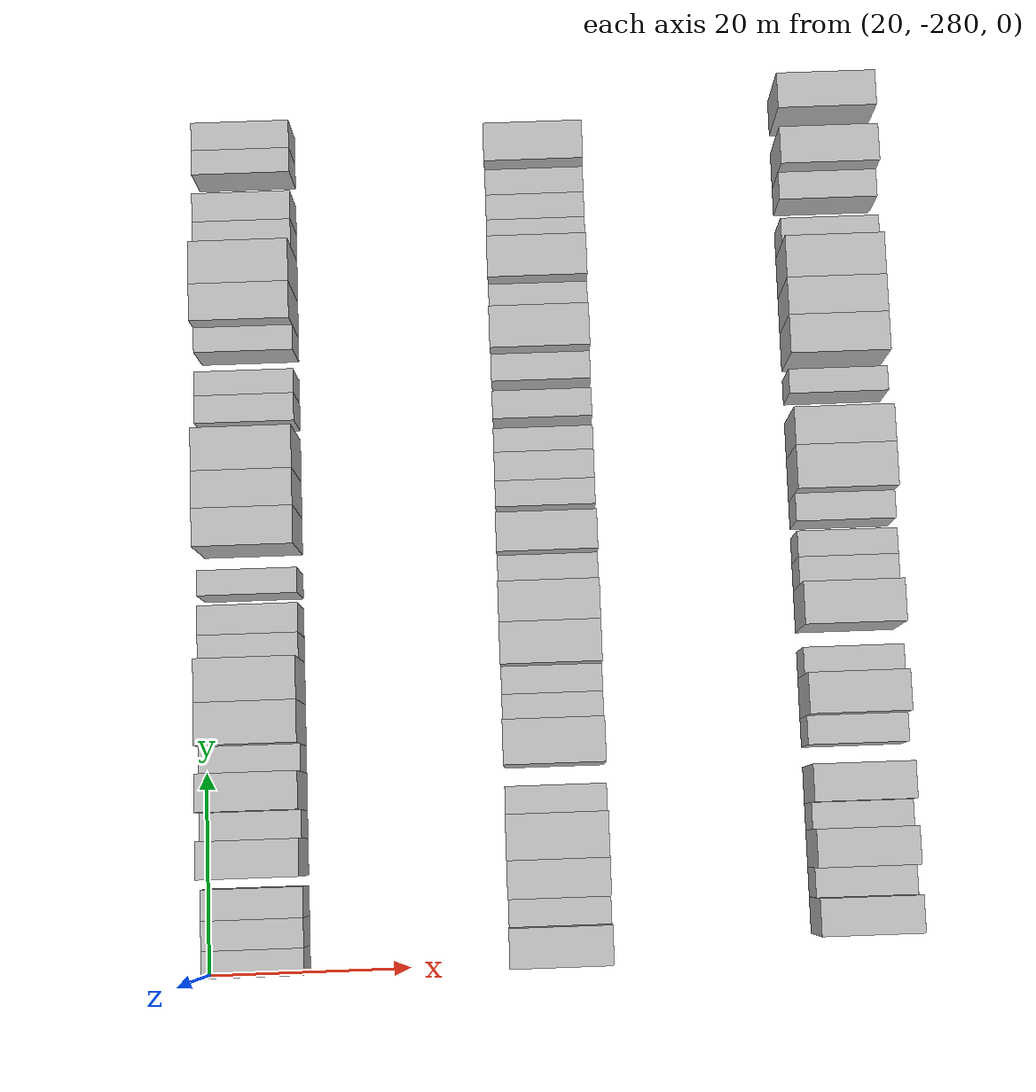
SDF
<sdf version="1.6">
 <world name="default">
  <model name="building_1">
   <static>1</static>
   <pose>25.0000 -278.6960 0 0.000000 0.000000 0.000000</pose>
   <link name="link">
    <pose>0 0 3.00 0 0 0</pose>
    <collision name="collision"><geometry><box><size>10.0000 2.6080 6.0000</size></box></geometry></collision>
    <visual name="visual">
     <cast_shadows>0</cast_shadows>
     <geometry><box><size>10.0000 2.6080 6.0000</size></box></geometry>
     <material>
      <script>
       <uri>model://HANNAS_wall/materials/scripts</uri>
       <uri>model://HANNAS_wall/materials/textures</uri>
       <name>vrc/HANNAS_wall</name>
      </script>
     </material>
    </visual>
   </link>
  </model>
  <model name="building_2">
   <static>1</static>
   <pose>25.0000 -275.9448 0 0.000000 0.000000 0.000000</pose>
   <link name="link">
    <pose>0 0 3.00 0 0 0</pose>
    <collision name="collision"><geometry><box><size>10.0000 2.8943 6.0000</size></box></geometry></collision>
    <visual name="visual">
     <cast_shadows>0</cast_shadows>
     <geometry><box><size>10.0000 2.8943 6.0000</size></box></geometry>
     <material>
      <script>
       <uri>model://HANNAS_wall/materials/scripts</uri>
       <uri>model://HANNAS_wall/materials/textures</uri>
       <name>vrc/HANNAS_wall</name>
      </script>
     </material>
    </visual>
   </link>
  </model>
  <model name="building_3">
   <static>1</static>
   <pose>25.0000 -272.9993 0 0.000000 0.000000 0.000000</pose>
   <link name="link">
    <pose>0 0 3.00 0 0 0</pose>
    <collision name="collision"><geometry><box><size>10.0000 2.9968 6.0000</size></box></geometry></collision>
    <visual name="visual">
     <cast_shadows>0</cast_shadows>
     <geometry><box><size>10.0000 2.9968 6.0000</size></box></geometry>
     <material>
      <script>
       <uri>model://HANNAS_wall/materials/scripts</uri>
       <uri>model://HANNAS_wall/materials/textures</uri>
       <name>vrc/HANNAS_wall</name>
      </script>
     </material>
    </visual>
   </link>
  </model>
  <model name="building_4">
   <static>1</static>
   <pose>25.0000 -268.6715 0 0.000000 0.000000 0.000000</pose>
   <link name="link">
    <pose>0 0 4.50 0 0 0</pose>
    <collision name="collision"><geometry><box><size>10.0000 3.6588 9.0000</size></box></geometry></collision>
    <visual name="visual">
     <cast_shadows>0</cast_shadows>
     <geometry><box><size>10.0000 3.6588 9.0000</size></box></geometry>
     <material>
      <script>
       <uri>model://HANNAS_wall/materials/scripts</uri>
       <uri>model://HANNAS_wall/materials/textures</uri>
       <name>vrc/HANNAS_wall</name>
      </script>
     </material>
    </visual>
   </link>
  </model>
  <model name="building_5">
   <static>1</static>
   <pose>25.0000 -265.4527 0 0.000000 0.000000 0.000000</pose>
   <link name="link">
    <pose>0 0 3.00 0 0 0</pose>
    <collision name="collision"><geometry><box><size>10.0000 2.7790 6.0000</size></box></geometry></collision>
    <visual name="visual">
     <cast_shadows>0</cast_shadows>
     <geometry><box><size>10.0000 2.7790 6.0000</size></box></geometry>
     <material>
      <script>
       <uri>model://HANNAS_wall/materials/scripts</uri>
       <uri>model://HANNAS_wall/materials/textures</uri>
       <name>vrc/HANNAS_wall</name>
      </script>
     </material>
    </visual>
   </link>
  </model>
  <model name="building_6">
   <static>1</static>
   <pose>25.0000 -262.1939 0 0.000000 0.000000 0.000000</pose>
   <link name="link">
    <pose>0 0 4.50 0 0 0</pose>
    <collision name="collision"><geometry><box><size>10.0000 3.7385 9.0000</size></box></geometry></collision>
    <visual name="visual">
     <cast_shadows>0</cast_shadows>
     <geometry><box><size>10.0000 3.7385 9.0000</size></box></geometry>
     <material>
      <script>
       <uri>model://HANNAS_wall/materials/scripts</uri>
       <uri>model://HANNAS_wall/materials/textures</uri>
       <name>vrc/HANNAS_wall</name>
      </script>
     </material>
    </visual>
   </link>
  </model>
  <model name="building_7">
   <static>1</static>
   <pose>25.0000 -258.9581 0 0.000000 0.000000 0.000000</pose>
   <link name="link">
    <pose>0 0 3.00 0 0 0</pose>
    <collision name="collision"><geometry><box><size>10.0000 2.7331 6.0000</size></box></geometry></collision>
    <visual name="visual">
     <cast_shadows>0</cast_shadows>
     <geometry><box><size>10.0000 2.7331 6.0000</size></box></geometry>
     <material>
      <script>
       <uri>model://HANNAS_wall/materials/scripts</uri>
       <uri>model://HANNAS_wall/materials/textures</uri>
       <name>vrc/HANNAS_wall</name>
      </script>
     </material>
    </visual>
   </link>
  </model>
  <model name="building_8">
   <static>1</static>
   <pose>25.0000 -255.5041 0 0.000000 0.000000 0.000000</pose>
   <link name="link">
    <pose>0 0 4.50 0 0 0</pose>
    <collision name="collision"><geometry><box><size>10.0000 4.1749 9.0000</size></box></geometry></collision>
    <visual name="visual">
     <cast_shadows>0</cast_shadows>
     <geometry><box><size>10.0000 4.1749 9.0000</size></box></geometry>
     <material>
      <script>
       <uri>model://HANNAS_wall/materials/scripts</uri>
       <uri>model://HANNAS_wall/materials/textures</uri>
       <name>vrc/HANNAS_wall</name>
      </script>
     </material>
    </visual>
   </link>
  </model>
  <model name="building_9">
   <static>1</static>
   <pose>25.0000 -251.2742 0 0.000000 0.000000 0.000000</pose>
   <link name="link">
    <pose>0 0 4.50 0 0 0</pose>
    <collision name="collision"><geometry><box><size>10.0000 4.2849 9.0000</size></box></geometry></collision>
    <visual name="visual">
     <cast_shadows>0</cast_shadows>
     <geometry><box><size>10.0000 4.2849 9.0000</size></box></geometry>
     <material>
      <script>
       <uri>model://HANNAS_wall/materials/scripts</uri>
       <uri>model://HANNAS_wall/materials/textures</uri>
       <name>vrc/HANNAS_wall</name>
      </script>
     </material>
    </visual>
   </link>
  </model>
  <model name="building_10">
   <static>1</static>
   <pose>25.0000 -247.8500 0 0.000000 0.000000 0.000000</pose>
   <link name="link">
    <pose>0 0 3.00 0 0 0</pose>
    <collision name="collision"><geometry><box><size>10.0000 2.5636 6.0000</size></box></geometry></collision>
    <visual name="visual">
     <cast_shadows>0</cast_shadows>
     <geometry><box><size>10.0000 2.5636 6.0000</size></box></geometry>
     <material>
      <script>
       <uri>model://HANNAS_wall/materials/scripts</uri>
       <uri>model://HANNAS_wall/materials/textures</uri>
       <name>vrc/HANNAS_wall</name>
      </script>
     </material>
    </visual>
   </link>
  </model>
  <model name="building_11">
   <static>1</static>
   <pose>25.0000 -245.0954 0 0.000000 0.000000 0.000000</pose>
   <link name="link">
    <pose>0 0 3.00 0 0 0</pose>
    <collision name="collision"><geometry><box><size>10.0000 2.9456 6.0000</size></box></geometry></collision>
    <visual name="visual">
     <cast_shadows>0</cast_shadows>
     <geometry><box><size>10.0000 2.9456 6.0000</size></box></geometry>
     <material>
      <script>
       <uri>model://HANNAS_wall/materials/scripts</uri>
       <uri>model://HANNAS_wall/materials/textures</uri>
       <name>vrc/HANNAS_wall</name>
      </script>
     </material>
    </visual>
   </link>
  </model>
  <model name="building_12">
   <static>1</static>
   <pose>25.0000 -241.3536 0 0.000000 0.000000 0.000000</pose>
   <link name="link">
    <pose>0 0 3.00 0 0 0</pose>
    <collision name="collision"><geometry><box><size>10.0000 2.5378 6.0000</size></box></geometry></collision>
    <visual name="visual">
     <cast_shadows>0</cast_shadows>
     <geometry><box><size>10.0000 2.5378 6.0000</size></box></geometry>
     <material>
      <script>
       <uri>model://HANNAS_wall/materials/scripts</uri>
       <uri>model://HANNAS_wall/materials/textures</uri>
       <name>vrc/HANNAS_wall</name>
      </script>
     </material>
    </visual>
   </link>
  </model>
  <model name="building_13">
   <static>1</static>
   <pose>25.0000 -236.1740 0 0.000000 0.000000 0.000000</pose>
   <link name="link">
    <pose>0 0 4.50 0 0 0</pose>
    <collision name="collision"><geometry><box><size>10.0000 3.8214 9.0000</size></box></geometry></collision>
    <visual name="visual">
     <cast_shadows>0</cast_shadows>
     <geometry><box><size>10.0000 3.8214 9.0000</size></box></geometry>
     <material>
      <script>
       <uri>model://HANNAS_wall/materials/scripts</uri>
       <uri>model://HANNAS_wall/materials/textures</uri>
       <name>vrc/HANNAS_wall</name>
      </script>
     </material>
    </visual>
   </link>
  </model>
  <model name="building_14">
   <static>1</static>
   <pose>25.0000 -232.3892 0 0.000000 0.000000 0.000000</pose>
   <link name="link">
    <pose>0 0 4.50 0 0 0</pose>
    <collision name="collision"><geometry><box><size>10.0000 3.7483 9.0000</size></box></geometry></collision>
    <visual name="visual">
     <cast_shadows>0</cast_shadows>
     <geometry><box><size>10.0000 3.7483 9.0000</size></box></geometry>
     <material>
      <script>
       <uri>model://HANNAS_wall/materials/scripts</uri>
       <uri>model://HANNAS_wall/materials/textures</uri>
       <name>vrc/HANNAS_wall</name>
      </script>
     </material>
    </visual>
   </link>
  </model>
  <model name="building_15">
   <static>1</static>
   <pose>25.0000 -228.3384 0 0.000000 0.000000 0.000000</pose>
   <link name="link">
    <pose>0 0 4.50 0 0 0</pose>
    <collision name="collision"><geometry><box><size>10.0000 4.3533 9.0000</size></box></geometry></collision>
    <visual name="visual">
     <cast_shadows>0</cast_shadows>
     <geometry><box><size>10.0000 4.3533 9.0000</size></box></geometry>
     <material>
      <script>
       <uri>model://HANNAS_wall/materials/scripts</uri>
       <uri>model://HANNAS_wall/materials/textures</uri>
       <name>vrc/HANNAS_wall</name>
      </script>
     </material>
    </visual>
   </link>
  </model>
  <model name="building_16">
   <static>1</static>
   <pose>25.0000 -223.7473 0 0.000000 0.000000 0.000000</pose>
   <link name="link">
    <pose>0 0 3.00 0 0 0</pose>
    <collision name="collision"><geometry><box><size>10.0000 2.8288 6.0000</size></box></geometry></collision>
    <visual name="visual">
     <cast_shadows>0</cast_shadows>
     <geometry><box><size>10.0000 2.8288 6.0000</size></box></geometry>
     <material>
      <script>
       <uri>model://HANNAS_wall/materials/scripts</uri>
       <uri>model://HANNAS_wall/materials/textures</uri>
       <name>vrc/HANNAS_wall</name>
      </script>
     </material>
    </visual>
   </link>
  </model>
  <model name="building_17">
   <static>1</static>
   <pose>25.0000 -221.0974 0 0.000000 0.000000 0.000000</pose>
   <link name="link">
    <pose>0 0 3.00 0 0 0</pose>
    <collision name="collision"><geometry><box><size>10.0000 2.4709 6.0000</size></box></geometry></collision>
    <visual name="visual">
     <cast_shadows>0</cast_shadows>
     <geometry><box><size>10.0000 2.4709 6.0000</size></box></geometry>
     <material>
      <script>
       <uri>model://HANNAS_wall/materials/scripts</uri>
       <uri>model://HANNAS_wall/materials/textures</uri>
       <name>vrc/HANNAS_wall</name>
      </script>
     </material>
    </visual>
   </link>
  </model>
  <model name="building_18">
   <static>1</static>
   <pose>25.0000 -216.5776 0 0.000000 0.000000 0.000000</pose>
   <link name="link">
    <pose>0 0 3.00 0 0 0</pose>
    <collision name="collision"><geometry><box><size>10.0000 2.5687 6.0000</size></box></geometry></collision>
    <visual name="visual">
     <cast_shadows>0</cast_shadows>
     <geometry><box><size>10.0000 2.5687 6.0000</size></box></geometry>
     <material>
      <script>
       <uri>model://HANNAS_wall/materials/scripts</uri>
       <uri>model://HANNAS_wall/materials/textures</uri>
       <name>vrc/HANNAS_wall</name>
      </script>
     </material>
    </visual>
   </link>
  </model>
  <model name="building_19">
   <static>1</static>
   <pose>25.0000 -213.3972 0 0.000000 0.000000 0.000000</pose>
   <link name="link">
    <pose>0 0 4.50 0 0 0</pose>
    <collision name="collision"><geometry><box><size>10.0000 3.7922 9.0000</size></box></geometry></collision>
    <visual name="visual">
     <cast_shadows>0</cast_shadows>
     <geometry><box><size>10.0000 3.7922 9.0000</size></box></geometry>
     <material>
      <script>
       <uri>model://HANNAS_wall/materials/scripts</uri>
       <uri>model://HANNAS_wall/materials/textures</uri>
       <name>vrc/HANNAS_wall</name>
      </script>
     </material>
    </visual>
   </link>
  </model>
  <model name="building_20">
   <static>1</static>
   <pose>25.0000 -209.3081 0 0.000000 0.000000 0.000000</pose>
   <link name="link">
    <pose>0 0 4.50 0 0 0</pose>
    <collision name="collision"><geometry><box><size>10.0000 4.3859 9.0000</size></box></geometry></collision>
    <visual name="visual">
     <cast_shadows>0</cast_shadows>
     <geometry><box><size>10.0000 4.3859 9.0000</size></box></geometry>
     <material>
      <script>
       <uri>model://HANNAS_wall/materials/scripts</uri>
       <uri>model://HANNAS_wall/materials/textures</uri>
       <name>vrc/HANNAS_wall</name>
      </script>
     </material>
    </visual>
   </link>
  </model>
  <model name="building_21">
   <static>1</static>
   <pose>25.0000 -205.6732 0 0.000000 0.000000 0.000000</pose>
   <link name="link">
    <pose>0 0 3.00 0 0 0</pose>
    <collision name="collision"><geometry><box><size>10.0000 2.8840 6.0000</size></box></geometry></collision>
    <visual name="visual">
     <cast_shadows>0</cast_shadows>
     <geometry><box><size>10.0000 2.8840 6.0000</size></box></geometry>
     <material>
      <script>
       <uri>model://HANNAS_wall/materials/scripts</uri>
       <uri>model://HANNAS_wall/materials/textures</uri>
       <name>vrc/HANNAS_wall</name>
      </script>
     </material>
    </visual>
   </link>
  </model>
  <model name="building_22">
   <static>1</static>
   <pose>25.0000 -202.7381 0 0.000000 0.000000 0.000000</pose>
   <link name="link">
    <pose>0 0 3.00 0 0 0</pose>
    <collision name="collision"><geometry><box><size>10.0000 2.9862 6.0000</size></box></geometry></collision>
    <visual name="visual">
     <cast_shadows>0</cast_shadows>
     <geometry><box><size>10.0000 2.9862 6.0000</size></box></geometry>
     <material>
      <script>
       <uri>model://HANNAS_wall/materials/scripts</uri>
       <uri>model://HANNAS_wall/materials/textures</uri>
       <name>vrc/HANNAS_wall</name>
      </script>
     </material>
    </visual>
   </link>
  </model>
  <model name="building_23">
   <static>1</static>
   <pose>25.0000 -197.9643 0 0.000000 0.000000 0.000000</pose>
   <link name="link">
    <pose>0 0 3.00 0 0 0</pose>
    <collision name="collision"><geometry><box><size>10.0000 2.5615 6.0000</size></box></geometry></collision>
    <visual name="visual">
     <cast_shadows>0</cast_shadows>
     <geometry><box><size>10.0000 2.5615 6.0000</size></box></geometry>
     <material>
      <script>
       <uri>model://HANNAS_wall/materials/scripts</uri>
       <uri>model://HANNAS_wall/materials/textures</uri>
       <name>vrc/HANNAS_wall</name>
      </script>
     </material>
    </visual>
   </link>
  </model>
  <model name="building_24">
   <static>1</static>
   <pose>25.0000 -195.2222 0 0.000000 0.000000 0.000000</pose>
   <link name="link">
    <pose>0 0 3.00 0 0 0</pose>
    <collision name="collision"><geometry><box><size>10.0000 2.9227 6.0000</size></box></geometry></collision>
    <visual name="visual">
     <cast_shadows>0</cast_shadows>
     <geometry><box><size>10.0000 2.9227 6.0000</size></box></geometry>
     <material>
      <script>
       <uri>model://HANNAS_wall/materials/scripts</uri>
       <uri>model://HANNAS_wall/materials/textures</uri>
       <name>vrc/HANNAS_wall</name>
      </script>
     </material>
    </visual>
   </link>
  </model>
  <model name="building_136">
   <static>1</static>
   <pose>55.0000 -278.0780 0 0.000000 0.000000 0.000000</pose>
   <link name="link">
    <pose>0 0 4.50 0 0 0</pose>
    <collision name="collision"><geometry><box><size>10.0000 3.8440 9.0000</size></box></geometry></collision>
    <visual name="visual">
     <cast_shadows>0</cast_shadows>
     <geometry><box><size>10.0000 3.8440 9.0000</size></box></geometry>
     <material>
      <script>
       <uri>model://HANNAS_wall/materials/scripts</uri>
       <uri>model://HANNAS_wall/materials/textures</uri>
       <name>vrc/HANNAS_wall</name>
      </script>
     </material>
    </visual>
   </link>
  </model>
  <model name="building_137">
   <static>1</static>
   <pose>55.0000 -274.7875 0 0.000000 0.000000 0.000000</pose>
   <link name="link">
    <pose>0 0 3.00 0 0 0</pose>
    <collision name="collision"><geometry><box><size>10.0000 2.7369 6.0000</size></box></geometry></collision>
    <visual name="visual">
     <cast_shadows>0</cast_shadows>
     <geometry><box><size>10.0000 2.7369 6.0000</size></box></geometry>
     <material>
      <script>
       <uri>model://HANNAS_wall/materials/scripts</uri>
       <uri>model://HANNAS_wall/materials/textures</uri>
       <name>vrc/HANNAS_wall</name>
      </script>
     </material>
    </visual>
   </link>
  </model>
  <model name="building_138">
   <static>1</static>
   <pose>55.0000 -271.5693 0 0.000000 0.000000 0.000000</pose>
   <link name="link">
    <pose>0 0 4.50 0 0 0</pose>
    <collision name="collision"><geometry><box><size>10.0000 3.6995 9.0000</size></box></geometry></collision>
    <visual name="visual">
     <cast_shadows>0</cast_shadows>
     <geometry><box><size>10.0000 3.6995 9.0000</size></box></geometry>
     <material>
      <script>
       <uri>model://HANNAS_wall/materials/scripts</uri>
       <uri>model://HANNAS_wall/materials/textures</uri>
       <name>vrc/HANNAS_wall</name>
      </script>
     </material>
    </visual>
   </link>
  </model>
  <model name="building_139">
   <static>1</static>
   <pose>55.0000 -267.4986 0 0.000000 0.000000 0.000000</pose>
   <link name="link">
    <pose>0 0 4.50 0 0 0</pose>
    <collision name="collision"><geometry><box><size>10.0000 4.4420 9.0000</size></box></geometry></collision>
    <visual name="visual">
     <cast_shadows>0</cast_shadows>
     <geometry><box><size>10.0000 4.4420 9.0000</size></box></geometry>
     <material>
      <script>
       <uri>model://HANNAS_wall/materials/scripts</uri>
       <uri>model://HANNAS_wall/materials/textures</uri>
       <name>vrc/HANNAS_wall</name>
      </script>
     </material>
    </visual>
   </link>
  </model>
  <model name="building_140">
   <static>1</static>
   <pose>55.0000 -263.9018 0 0.000000 0.000000 0.000000</pose>
   <link name="link">
    <pose>0 0 3.00 0 0 0</pose>
    <collision name="collision"><geometry><box><size>10.0000 2.7516 6.0000</size></box></geometry></collision>
    <visual name="visual">
     <cast_shadows>0</cast_shadows>
     <geometry><box><size>10.0000 2.7516 6.0000</size></box></geometry>
     <material>
      <script>
       <uri>model://HANNAS_wall/materials/scripts</uri>
       <uri>model://HANNAS_wall/materials/textures</uri>
       <name>vrc/HANNAS_wall</name>
      </script>
     </material>
    </visual>
   </link>
  </model>
  <model name="building_141">
   <static>1</static>
   <pose>55.0000 -258.3168 0 0.000000 0.000000 0.000000</pose>
   <link name="link">
    <pose>0 0 4.50 0 0 0</pose>
    <collision name="collision"><geometry><box><size>10.0000 4.4184 9.0000</size></box></geometry></collision>
    <visual name="visual">
     <cast_shadows>0</cast_shadows>
     <geometry><box><size>10.0000 4.4184 9.0000</size></box></geometry>
     <material>
      <script>
       <uri>model://HANNAS_wall/materials/scripts</uri>
       <uri>model://HANNAS_wall/materials/textures</uri>
       <name>vrc/HANNAS_wall</name>
      </script>
     </material>
    </visual>
   </link>
  </model>
  <model name="building_142">
   <static>1</static>
   <pose>55.0000 -254.7925 0 0.000000 0.000000 0.000000</pose>
   <link name="link">
    <pose>0 0 3.00 0 0 0</pose>
    <collision name="collision"><geometry><box><size>10.0000 2.6302 6.0000</size></box></geometry></collision>
    <visual name="visual">
     <cast_shadows>0</cast_shadows>
     <geometry><box><size>10.0000 2.6302 6.0000</size></box></geometry>
     <material>
      <script>
       <uri>model://HANNAS_wall/materials/scripts</uri>
       <uri>model://HANNAS_wall/materials/textures</uri>
       <name>vrc/HANNAS_wall</name>
      </script>
     </material>
    </visual>
   </link>
  </model>
  <model name="building_143">
   <static>1</static>
   <pose>55.0000 -252.1025 0 0.000000 0.000000 0.000000</pose>
   <link name="link">
    <pose>0 0 3.00 0 0 0</pose>
    <collision name="collision"><geometry><box><size>10.0000 2.7499 6.0000</size></box></geometry></collision>
    <visual name="visual">
     <cast_shadows>0</cast_shadows>
     <geometry><box><size>10.0000 2.7499 6.0000</size></box></geometry>
     <material>
      <script>
       <uri>model://HANNAS_wall/materials/scripts</uri>
       <uri>model://HANNAS_wall/materials/textures</uri>
       <name>vrc/HANNAS_wall</name>
      </script>
     </material>
    </visual>
   </link>
  </model>
  <model name="building_144">
   <static>1</static>
   <pose>55.0000 -248.6547 0 0.000000 0.000000 0.000000</pose>
   <link name="link">
    <pose>0 0 4.50 0 0 0</pose>
    <collision name="collision"><geometry><box><size>10.0000 4.1457 9.0000</size></box></geometry></collision>
    <visual name="visual">
     <cast_shadows>0</cast_shadows>
     <geometry><box><size>10.0000 4.1457 9.0000</size></box></geometry>
     <material>
      <script>
       <uri>model://HANNAS_wall/materials/scripts</uri>
       <uri>model://HANNAS_wall/materials/textures</uri>
       <name>vrc/HANNAS_wall</name>
      </script>
     </material>
    </visual>
   </link>
  </model>
  <model name="building_145">
   <static>1</static>
   <pose>55.0000 -244.5753 0 0.000000 0.000000 0.000000</pose>
   <link name="link">
    <pose>0 0 4.50 0 0 0</pose>
    <collision name="collision"><geometry><box><size>10.0000 4.0130 9.0000</size></box></geometry></collision>
    <visual name="visual">
     <cast_shadows>0</cast_shadows>
     <geometry><box><size>10.0000 4.0130 9.0000</size></box></geometry>
     <material>
      <script>
       <uri>model://HANNAS_wall/materials/scripts</uri>
       <uri>model://HANNAS_wall/materials/textures</uri>
       <name>vrc/HANNAS_wall</name>
      </script>
     </material>
    </visual>
   </link>
  </model>
  <model name="building_146">
   <static>1</static>
   <pose>55.0000 -241.1016 0 0.000000 0.000000 0.000000</pose>
   <link name="link">
    <pose>0 0 3.00 0 0 0</pose>
    <collision name="collision"><geometry><box><size>10.0000 2.9343 6.0000</size></box></geometry></collision>
    <visual name="visual">
     <cast_shadows>0</cast_shadows>
     <geometry><box><size>10.0000 2.9343 6.0000</size></box></geometry>
     <material>
      <script>
       <uri>model://HANNAS_wall/materials/scripts</uri>
       <uri>model://HANNAS_wall/materials/textures</uri>
       <name>vrc/HANNAS_wall</name>
      </script>
     </material>
    </visual>
   </link>
  </model>
  <model name="building_147">
   <static>1</static>
   <pose>55.0000 -237.6768 0 0.000000 0.000000 0.000000</pose>
   <link name="link">
    <pose>0 0 4.50 0 0 0</pose>
    <collision name="collision"><geometry><box><size>10.0000 3.9153 9.0000</size></box></geometry></collision>
    <visual name="visual">
     <cast_shadows>0</cast_shadows>
     <geometry><box><size>10.0000 3.9153 9.0000</size></box></geometry>
     <material>
      <script>
       <uri>model://HANNAS_wall/materials/scripts</uri>
       <uri>model://HANNAS_wall/materials/textures</uri>
       <name>vrc/HANNAS_wall</name>
      </script>
     </material>
    </visual>
   </link>
  </model>
  <model name="building_148">
   <static>1</static>
   <pose>55.0000 -233.4038 0 0.000000 0.000000 0.000000</pose>
   <link name="link">
    <pose>0 0 3.00 0 0 0</pose>
    <collision name="collision"><geometry><box><size>10.0000 2.6307 6.0000</size></box></geometry></collision>
    <visual name="visual">
     <cast_shadows>0</cast_shadows>
     <geometry><box><size>10.0000 2.6307 6.0000</size></box></geometry>
     <material>
      <script>
       <uri>model://HANNAS_wall/materials/scripts</uri>
       <uri>model://HANNAS_wall/materials/textures</uri>
       <name>vrc/HANNAS_wall</name>
      </script>
     </material>
    </visual>
   </link>
  </model>
  <model name="building_149">
   <static>1</static>
   <pose>55.0000 -230.6289 0 0.000000 0.000000 0.000000</pose>
   <link name="link">
    <pose>0 0 3.00 0 0 0</pose>
    <collision name="collision"><geometry><box><size>10.0000 2.9192 6.0000</size></box></geometry></collision>
    <visual name="visual">
     <cast_shadows>0</cast_shadows>
     <geometry><box><size>10.0000 2.9192 6.0000</size></box></geometry>
     <material>
      <script>
       <uri>model://HANNAS_wall/materials/scripts</uri>
       <uri>model://HANNAS_wall/materials/textures</uri>
       <name>vrc/HANNAS_wall</name>
      </script>
     </material>
    </visual>
   </link>
  </model>
  <model name="building_150">
   <static>1</static>
   <pose>55.0000 -227.9524 0 0.000000 0.000000 0.000000</pose>
   <link name="link">
    <pose>0 0 3.00 0 0 0</pose>
    <collision name="collision"><geometry><box><size>10.0000 2.4337 6.0000</size></box></geometry></collision>
    <visual name="visual">
     <cast_shadows>0</cast_shadows>
     <geometry><box><size>10.0000 2.4337 6.0000</size></box></geometry>
     <material>
      <script>
       <uri>model://HANNAS_wall/materials/scripts</uri>
       <uri>model://HANNAS_wall/materials/textures</uri>
       <name>vrc/HANNAS_wall</name>
      </script>
     </material>
    </visual>
   </link>
  </model>
  <model name="building_151">
   <static>1</static>
   <pose>55.0000 -224.3113 0 0.000000 0.000000 0.000000</pose>
   <link name="link">
    <pose>0 0 3.00 0 0 0</pose>
    <collision name="collision"><geometry><box><size>10.0000 2.8485 6.0000</size></box></geometry></collision>
    <visual name="visual">
     <cast_shadows>0</cast_shadows>
     <geometry><box><size>10.0000 2.8485 6.0000</size></box></geometry>
     <material>
      <script>
       <uri>model://HANNAS_wall/materials/scripts</uri>
       <uri>model://HANNAS_wall/materials/textures</uri>
       <name>vrc/HANNAS_wall</name>
      </script>
     </material>
    </visual>
   </link>
  </model>
  <model name="building_152">
   <static>1</static>
   <pose>55.0000 -220.4907 0 0.000000 0.000000 0.000000</pose>
   <link name="link">
    <pose>0 0 3.00 0 0 0</pose>
    <collision name="collision"><geometry><box><size>10.0000 2.7927 6.0000</size></box></geometry></collision>
    <visual name="visual">
     <cast_shadows>0</cast_shadows>
     <geometry><box><size>10.0000 2.7927 6.0000</size></box></geometry>
     <material>
      <script>
       <uri>model://HANNAS_wall/materials/scripts</uri>
       <uri>model://HANNAS_wall/materials/textures</uri>
       <name>vrc/HANNAS_wall</name>
      </script>
     </material>
    </visual>
   </link>
  </model>
  <model name="building_153">
   <static>1</static>
   <pose>55.0000 -216.9631 0 0.000000 0.000000 0.000000</pose>
   <link name="link">
    <pose>0 0 4.50 0 0 0</pose>
    <collision name="collision"><geometry><box><size>10.0000 4.2627 9.0000</size></box></geometry></collision>
    <visual name="visual">
     <cast_shadows>0</cast_shadows>
     <geometry><box><size>10.0000 4.2627 9.0000</size></box></geometry>
     <material>
      <script>
       <uri>model://HANNAS_wall/materials/scripts</uri>
       <uri>model://HANNAS_wall/materials/textures</uri>
       <name>vrc/HANNAS_wall</name>
      </script>
     </material>
    </visual>
   </link>
  </model>
  <model name="building_154">
   <static>1</static>
   <pose>55.0000 -213.3389 0 0.000000 0.000000 0.000000</pose>
   <link name="link">
    <pose>0 0 3.00 0 0 0</pose>
    <collision name="collision"><geometry><box><size>10.0000 2.9856 6.0000</size></box></geometry></collision>
    <visual name="visual">
     <cast_shadows>0</cast_shadows>
     <geometry><box><size>10.0000 2.9856 6.0000</size></box></geometry>
     <material>
      <script>
       <uri>model://HANNAS_wall/materials/scripts</uri>
       <uri>model://HANNAS_wall/materials/textures</uri>
       <name>vrc/HANNAS_wall</name>
      </script>
     </material>
    </visual>
   </link>
  </model>
  <model name="building_155">
   <static>1</static>
   <pose>55.0000 -209.7292 0 0.000000 0.000000 0.000000</pose>
   <link name="link">
    <pose>0 0 4.50 0 0 0</pose>
    <collision name="collision"><geometry><box><size>10.0000 4.2338 9.0000</size></box></geometry></collision>
    <visual name="visual">
     <cast_shadows>0</cast_shadows>
     <geometry><box><size>10.0000 4.2338 9.0000</size></box></geometry>
     <material>
      <script>
       <uri>model://HANNAS_wall/materials/scripts</uri>
       <uri>model://HANNAS_wall/materials/textures</uri>
       <name>vrc/HANNAS_wall</name>
      </script>
     </material>
    </visual>
   </link>
  </model>
  <model name="building_156">
   <static>1</static>
   <pose>55.0000 -206.3439 0 0.000000 0.000000 0.000000</pose>
   <link name="link">
    <pose>0 0 3.00 0 0 0</pose>
    <collision name="collision"><geometry><box><size>10.0000 2.5368 6.0000</size></box></geometry></collision>
    <visual name="visual">
     <cast_shadows>0</cast_shadows>
     <geometry><box><size>10.0000 2.5368 6.0000</size></box></geometry>
     <material>
      <script>
       <uri>model://HANNAS_wall/materials/scripts</uri>
       <uri>model://HANNAS_wall/materials/textures</uri>
       <name>vrc/HANNAS_wall</name>
      </script>
     </material>
    </visual>
   </link>
  </model>
  <model name="building_157">
   <static>1</static>
   <pose>55.0000 -203.7665 0 0.000000 0.000000 0.000000</pose>
   <link name="link">
    <pose>0 0 3.00 0 0 0</pose>
    <collision name="collision"><geometry><box><size>10.0000 2.6180 6.0000</size></box></geometry></collision>
    <visual name="visual">
     <cast_shadows>0</cast_shadows>
     <geometry><box><size>10.0000 2.6180 6.0000</size></box></geometry>
     <material>
      <script>
       <uri>model://HANNAS_wall/materials/scripts</uri>
       <uri>model://HANNAS_wall/materials/textures</uri>
       <name>vrc/HANNAS_wall</name>
      </script>
     </material>
    </visual>
   </link>
  </model>
  <model name="building_158">
   <static>1</static>
   <pose>55.0000 -201.1184 0 0.000000 0.000000 0.000000</pose>
   <link name="link">
    <pose>0 0 3.00 0 0 0</pose>
    <collision name="collision"><geometry><box><size>10.0000 2.6782 6.0000</size></box></geometry></collision>
    <visual name="visual">
     <cast_shadows>0</cast_shadows>
     <geometry><box><size>10.0000 2.6782 6.0000</size></box></geometry>
     <material>
      <script>
       <uri>model://HANNAS_wall/materials/scripts</uri>
       <uri>model://HANNAS_wall/materials/textures</uri>
       <name>vrc/HANNAS_wall</name>
      </script>
     </material>
    </visual>
   </link>
  </model>
  <model name="building_159">
   <static>1</static>
   <pose>55.0000 -197.8062 0 0.000000 0.000000 0.000000</pose>
   <link name="link">
    <pose>0 0 4.50 0 0 0</pose>
    <collision name="collision"><geometry><box><size>10.0000 3.9463 9.0000</size></box></geometry></collision>
    <visual name="visual">
     <cast_shadows>0</cast_shadows>
     <geometry><box><size>10.0000 3.9463 9.0000</size></box></geometry>
     <material>
      <script>
       <uri>model://HANNAS_wall/materials/scripts</uri>
       <uri>model://HANNAS_wall/materials/textures</uri>
       <name>vrc/HANNAS_wall</name>
      </script>
     </material>
    </visual>
   </link>
  </model>
  <model name="building_271">
   <static>1</static>
   <pose>85.0000 -276.1885 0 0.000000 0.000000 0.000000</pose>
   <link name="link">
    <pose>0 0 4.50 0 0 0</pose>
    <collision name="collision"><geometry><box><size>10.0000 3.6230 9.0000</size></box></geometry></collision>
    <visual name="visual">
     <cast_shadows>0</cast_shadows>
     <geometry><box><size>10.0000 3.6230 9.0000</size></box></geometry>
     <material>
      <script>
       <uri>model://HANNAS_wall/materials/scripts</uri>
       <uri>model://HANNAS_wall/materials/textures</uri>
       <name>vrc/HANNAS_wall</name>
      </script>
     </material>
    </visual>
   </link>
  </model>
  <model name="building_272">
   <static>1</static>
   <pose>85.0000 -272.9249 0 0.000000 0.000000 0.000000</pose>
   <link name="link">
    <pose>0 0 3.00 0 0 0</pose>
    <collision name="collision"><geometry><box><size>10.0000 2.9044 6.0000</size></box></geometry></collision>
    <visual name="visual">
     <cast_shadows>0</cast_shadows>
     <geometry><box><size>10.0000 2.9044 6.0000</size></box></geometry>
     <material>
      <script>
       <uri>model://HANNAS_wall/materials/scripts</uri>
       <uri>model://HANNAS_wall/materials/textures</uri>
       <name>vrc/HANNAS_wall</name>
      </script>
     </material>
    </visual>
   </link>
  </model>
  <model name="building_273">
   <static>1</static>
   <pose>85.0000 -269.6154 0 0.000000 0.000000 0.000000</pose>
   <link name="link">
    <pose>0 0 4.50 0 0 0</pose>
    <collision name="collision"><geometry><box><size>10.0000 3.7146 9.0000</size></box></geometry></collision>
    <visual name="visual">
     <cast_shadows>0</cast_shadows>
     <geometry><box><size>10.0000 3.7146 9.0000</size></box></geometry>
     <material>
      <script>
       <uri>model://HANNAS_wall/materials/scripts</uri>
       <uri>model://HANNAS_wall/materials/textures</uri>
       <name>vrc/HANNAS_wall</name>
      </script>
     </material>
    </visual>
   </link>
  </model>
  <model name="building_274">
   <static>1</static>
   <pose>85.0000 -266.4498 0 0.000000 0.000000 0.000000</pose>
   <link name="link">
    <pose>0 0 3.00 0 0 0</pose>
    <collision name="collision"><geometry><box><size>10.0000 2.6166 6.0000</size></box></geometry></collision>
    <visual name="visual">
     <cast_shadows>0</cast_shadows>
     <geometry><box><size>10.0000 2.6166 6.0000</size></box></geometry>
     <material>
      <script>
       <uri>model://HANNAS_wall/materials/scripts</uri>
       <uri>model://HANNAS_wall/materials/textures</uri>
       <name>vrc/HANNAS_wall</name>
      </script>
     </material>
    </visual>
   </link>
  </model>
  <model name="building_275">
   <static>1</static>
   <pose>85.0000 -263.3184 0 0.000000 0.000000 0.000000</pose>
   <link name="link">
    <pose>0 0 4.50 0 0 0</pose>
    <collision name="collision"><geometry><box><size>10.0000 3.6461 9.0000</size></box></geometry></collision>
    <visual name="visual">
     <cast_shadows>0</cast_shadows>
     <geometry><box><size>10.0000 3.6461 9.0000</size></box></geometry>
     <material>
      <script>
       <uri>model://HANNAS_wall/materials/scripts</uri>
       <uri>model://HANNAS_wall/materials/textures</uri>
       <name>vrc/HANNAS_wall</name>
      </script>
     </material>
    </visual>
   </link>
  </model>
  <model name="building_276">
   <static>1</static>
   <pose>85.0000 -258.0631 0 0.000000 0.000000 0.000000</pose>
   <link name="link">
    <pose>0 0 3.00 0 0 0</pose>
    <collision name="collision"><geometry><box><size>10.0000 2.8645 6.0000</size></box></geometry></collision>
    <visual name="visual">
     <cast_shadows>0</cast_shadows>
     <geometry><box><size>10.0000 2.8645 6.0000</size></box></geometry>
     <material>
      <script>
       <uri>model://HANNAS_wall/materials/scripts</uri>
       <uri>model://HANNAS_wall/materials/textures</uri>
       <name>vrc/HANNAS_wall</name>
      </script>
     </material>
    </visual>
   </link>
  </model>
  <model name="building_277">
   <static>1</static>
   <pose>85.0000 -254.6086 0 0.000000 0.000000 0.000000</pose>
   <link name="link">
    <pose>0 0 4.50 0 0 0</pose>
    <collision name="collision"><geometry><box><size>10.0000 4.0444 9.0000</size></box></geometry></collision>
    <visual name="visual">
     <cast_shadows>0</cast_shadows>
     <geometry><box><size>10.0000 4.0444 9.0000</size></box></geometry>
     <material>
      <script>
       <uri>model://HANNAS_wall/materials/scripts</uri>
       <uri>model://HANNAS_wall/materials/textures</uri>
       <name>vrc/HANNAS_wall</name>
      </script>
     </material>
    </visual>
   </link>
  </model>
  <model name="building_278">
   <static>1</static>
   <pose>85.0000 -251.2291 0 0.000000 0.000000 0.000000</pose>
   <link name="link">
    <pose>0 0 3.00 0 0 0</pose>
    <collision name="collision"><geometry><box><size>10.0000 2.7145 6.0000</size></box></geometry></collision>
    <visual name="visual">
     <cast_shadows>0</cast_shadows>
     <geometry><box><size>10.0000 2.7145 6.0000</size></box></geometry>
     <material>
      <script>
       <uri>model://HANNAS_wall/materials/scripts</uri>
       <uri>model://HANNAS_wall/materials/textures</uri>
       <name>vrc/HANNAS_wall</name>
      </script>
     </material>
    </visual>
   </link>
  </model>
  <model name="building_279">
   <static>1</static>
   <pose>85.0000 -245.7647 0 0.000000 0.000000 0.000000</pose>
   <link name="link">
    <pose>0 0 4.50 0 0 0</pose>
    <collision name="collision"><geometry><box><size>10.0000 4.2143 9.0000</size></box></geometry></collision>
    <visual name="visual">
     <cast_shadows>0</cast_shadows>
     <geometry><box><size>10.0000 4.2143 9.0000</size></box></geometry>
     <material>
      <script>
       <uri>model://HANNAS_wall/materials/scripts</uri>
       <uri>model://HANNAS_wall/materials/textures</uri>
       <name>vrc/HANNAS_wall</name>
      </script>
     </material>
    </visual>
   </link>
  </model>
  <model name="building_280">
   <static>1</static>
   <pose>85.0000 -242.2425 0 0.000000 0.000000 0.000000</pose>
   <link name="link">
    <pose>0 0 3.00 0 0 0</pose>
    <collision name="collision"><geometry><box><size>10.0000 2.8301 6.0000</size></box></geometry></collision>
    <visual name="visual">
     <cast_shadows>0</cast_shadows>
     <geometry><box><size>10.0000 2.8301 6.0000</size></box></geometry>
     <material>
      <script>
       <uri>model://HANNAS_wall/materials/scripts</uri>
       <uri>model://HANNAS_wall/materials/textures</uri>
       <name>vrc/HANNAS_wall</name>
      </script>
     </material>
    </visual>
   </link>
  </model>
  <model name="building_281">
   <static>1</static>
   <pose>85.0000 -239.5275 0 0.000000 0.000000 0.000000</pose>
   <link name="link">
    <pose>0 0 3.00 0 0 0</pose>
    <collision name="collision"><geometry><box><size>10.0000 2.5999 6.0000</size></box></geometry></collision>
    <visual name="visual">
     <cast_shadows>0</cast_shadows>
     <geometry><box><size>10.0000 2.5999 6.0000</size></box></geometry>
     <material>
      <script>
       <uri>model://HANNAS_wall/materials/scripts</uri>
       <uri>model://HANNAS_wall/materials/textures</uri>
       <name>vrc/HANNAS_wall</name>
      </script>
     </material>
    </visual>
   </link>
  </model>
  <model name="building_282">
   <static>1</static>
   <pose>85.0000 -235.8189 0 0.000000 0.000000 0.000000</pose>
   <link name="link">
    <pose>0 0 3.00 0 0 0</pose>
    <collision name="collision"><geometry><box><size>10.0000 2.8173 6.0000</size></box></geometry></collision>
    <visual name="visual">
     <cast_shadows>0</cast_shadows>
     <geometry><box><size>10.0000 2.8173 6.0000</size></box></geometry>
     <material>
      <script>
       <uri>model://HANNAS_wall/materials/scripts</uri>
       <uri>model://HANNAS_wall/materials/textures</uri>
       <name>vrc/HANNAS_wall</name>
      </script>
     </material>
    </visual>
   </link>
  </model>
  <model name="building_283">
   <static>1</static>
   <pose>85.0000 -232.2035 0 0.000000 0.000000 0.000000</pose>
   <link name="link">
    <pose>0 0 4.50 0 0 0</pose>
    <collision name="collision"><geometry><box><size>10.0000 4.4136 9.0000</size></box></geometry></collision>
    <visual name="visual">
     <cast_shadows>0</cast_shadows>
     <geometry><box><size>10.0000 4.4136 9.0000</size></box></geometry>
     <material>
      <script>
       <uri>model://HANNAS_wall/materials/scripts</uri>
       <uri>model://HANNAS_wall/materials/textures</uri>
       <name>vrc/HANNAS_wall</name>
      </script>
     </material>
    </visual>
   </link>
  </model>
  <model name="building_284">
   <static>1</static>
   <pose>85.0000 -228.0945 0 0.000000 0.000000 0.000000</pose>
   <link name="link">
    <pose>0 0 4.50 0 0 0</pose>
    <collision name="collision"><geometry><box><size>10.0000 3.8043 9.0000</size></box></geometry></collision>
    <visual name="visual">
     <cast_shadows>0</cast_shadows>
     <geometry><box><size>10.0000 3.8043 9.0000</size></box></geometry>
     <material>
      <script>
       <uri>model://HANNAS_wall/materials/scripts</uri>
       <uri>model://HANNAS_wall/materials/textures</uri>
       <name>vrc/HANNAS_wall</name>
      </script>
     </material>
    </visual>
   </link>
  </model>
  <model name="building_285">
   <static>1</static>
   <pose>85.0000 -222.9438 0 0.000000 0.000000 0.000000</pose>
   <link name="link">
    <pose>0 0 3.00 0 0 0</pose>
    <collision name="collision"><geometry><box><size>10.0000 2.4971 6.0000</size></box></geometry></collision>
    <visual name="visual">
     <cast_shadows>0</cast_shadows>
     <geometry><box><size>10.0000 2.4971 6.0000</size></box></geometry>
     <material>
      <script>
       <uri>model://HANNAS_wall/materials/scripts</uri>
       <uri>model://HANNAS_wall/materials/textures</uri>
       <name>vrc/HANNAS_wall</name>
      </script>
     </material>
    </visual>
   </link>
  </model>
  <model name="building_286">
   <static>1</static>
   <pose>85.0000 -218.7271 0 0.000000 0.000000 0.000000</pose>
   <link name="link">
    <pose>0 0 4.50 0 0 0</pose>
    <collision name="collision"><geometry><box><size>10.0000 3.9363 9.0000</size></box></geometry></collision>
    <visual name="visual">
     <cast_shadows>0</cast_shadows>
     <geometry><box><size>10.0000 3.9363 9.0000</size></box></geometry>
     <material>
      <script>
       <uri>model://HANNAS_wall/materials/scripts</uri>
       <uri>model://HANNAS_wall/materials/textures</uri>
       <name>vrc/HANNAS_wall</name>
      </script>
     </material>
    </visual>
   </link>
  </model>
  <model name="building_287">
   <static>1</static>
   <pose>85.0000 -214.8443 0 0.000000 0.000000 0.000000</pose>
   <link name="link">
    <pose>0 0 4.50 0 0 0</pose>
    <collision name="collision"><geometry><box><size>10.0000 3.8294 9.0000</size></box></geometry></collision>
    <visual name="visual">
     <cast_shadows>0</cast_shadows>
     <geometry><box><size>10.0000 3.8294 9.0000</size></box></geometry>
     <material>
      <script>
       <uri>model://HANNAS_wall/materials/scripts</uri>
       <uri>model://HANNAS_wall/materials/textures</uri>
       <name>vrc/HANNAS_wall</name>
      </script>
     </material>
    </visual>
   </link>
  </model>
  <model name="building_288">
   <static>1</static>
   <pose>85.0000 -210.7761 0 0.000000 0.000000 0.000000</pose>
   <link name="link">
    <pose>0 0 4.50 0 0 0</pose>
    <collision name="collision"><geometry><box><size>10.0000 4.3070 9.0000</size></box></geometry></collision>
    <visual name="visual">
     <cast_shadows>0</cast_shadows>
     <geometry><box><size>10.0000 4.3070 9.0000</size></box></geometry>
     <material>
      <script>
       <uri>model://HANNAS_wall/materials/scripts</uri>
       <uri>model://HANNAS_wall/materials/textures</uri>
       <name>vrc/HANNAS_wall</name>
      </script>
     </material>
    </visual>
   </link>
  </model>
  <model name="building_289">
   <static>1</static>
   <pose>85.0000 -207.2925 0 0.000000 0.000000 0.000000</pose>
   <link name="link">
    <pose>0 0 3.00 0 0 0</pose>
    <collision name="collision"><geometry><box><size>10.0000 2.6601 6.0000</size></box></geometry></collision>
    <visual name="visual">
     <cast_shadows>0</cast_shadows>
     <geometry><box><size>10.0000 2.6601 6.0000</size></box></geometry>
     <material>
      <script>
       <uri>model://HANNAS_wall/materials/scripts</uri>
       <uri>model://HANNAS_wall/materials/textures</uri>
       <name>vrc/HANNAS_wall</name>
      </script>
     </material>
    </visual>
   </link>
  </model>
  <model name="building_290">
   <static>1</static>
   <pose>85.0000 -202.5300 0 0.000000 0.000000 0.000000</pose>
   <link name="link">
    <pose>0 0 3.00 0 0 0</pose>
    <collision name="collision"><geometry><box><size>10.0000 2.8650 6.0000</size></box></geometry></collision>
    <visual name="visual">
     <cast_shadows>0</cast_shadows>
     <geometry><box><size>10.0000 2.8650 6.0000</size></box></geometry>
     <material>
      <script>
       <uri>model://HANNAS_wall/materials/scripts</uri>
       <uri>model://HANNAS_wall/materials/textures</uri>
       <name>vrc/HANNAS_wall</name>
      </script>
     </material>
    </visual>
   </link>
  </model>
  <model name="building_291">
   <static>1</static>
   <pose>85.0000 -199.1710 0 0.000000 0.000000 0.000000</pose>
   <link name="link">
    <pose>0 0 4.50 0 0 0</pose>
    <collision name="collision"><geometry><box><size>10.0000 3.8531 9.0000</size></box></geometry></collision>
    <visual name="visual">
     <cast_shadows>0</cast_shadows>
     <geometry><box><size>10.0000 3.8531 9.0000</size></box></geometry>
     <material>
      <script>
       <uri>model://HANNAS_wall/materials/scripts</uri>
       <uri>model://HANNAS_wall/materials/textures</uri>
       <name>vrc/HANNAS_wall</name>
      </script>
     </material>
    </visual>
   </link>
  </model>
  <model name="building_292">
   <static>1</static>
   <pose>85.0000 -193.4156 0 0.000000 0.000000 0.000000</pose>
   <link name="link">
    <pose>0 0 4.50 0 0 0</pose>
    <collision name="collision"><geometry><box><size>10.0000 3.6576 9.0000</size></box></geometry></collision>
    <visual name="visual">
     <cast_shadows>0</cast_shadows>
     <geometry><box><size>10.0000 3.6576 9.0000</size></box></geometry>
     <material>
      <script>
       <uri>model://HANNAS_wall/materials/scripts</uri>
       <uri>model://HANNAS_wall/materials/textures</uri>
       <name>vrc/HANNAS_wall</name>
      </script>
     </material>
    </visual>
   </link>
  </model>
 </world>
</sdf>
